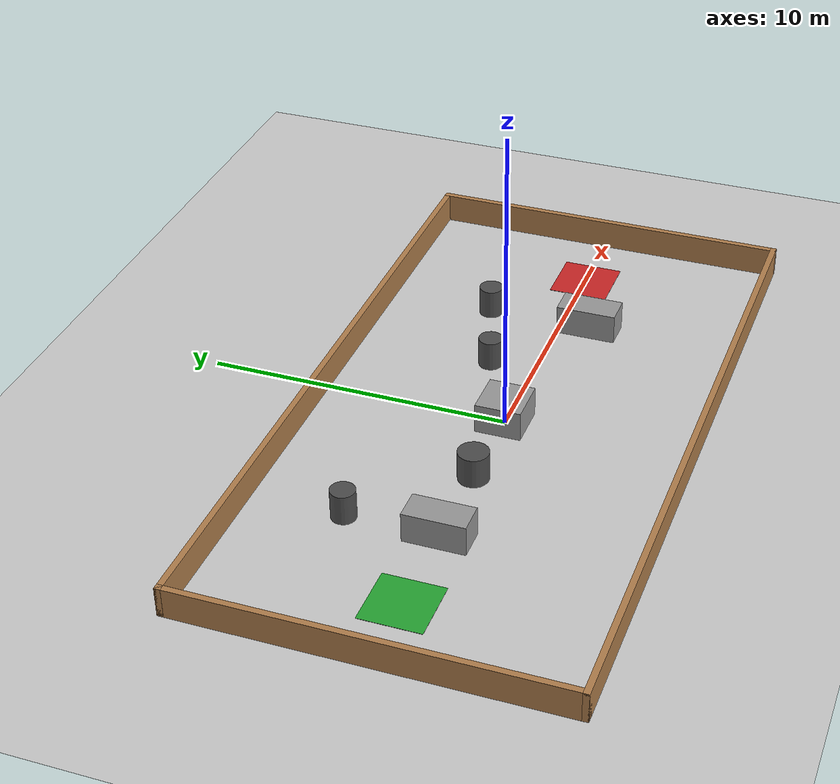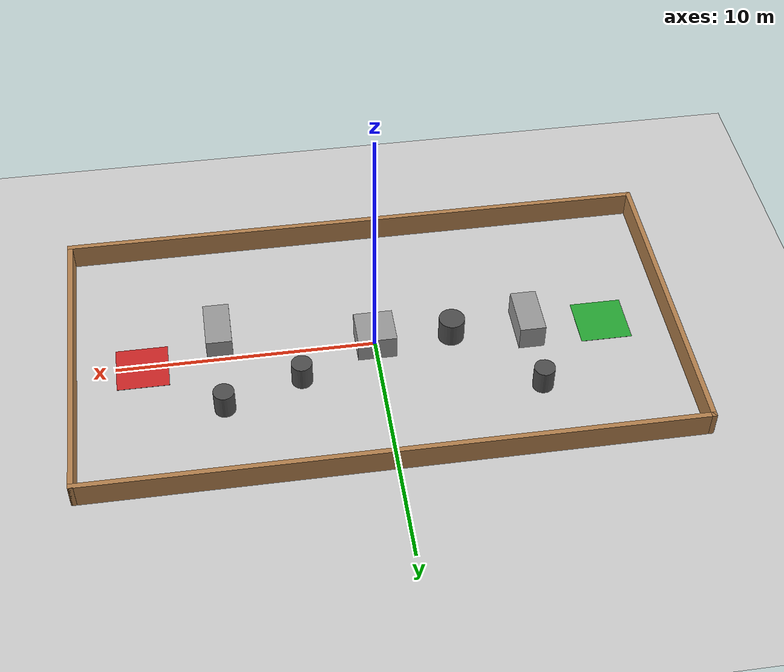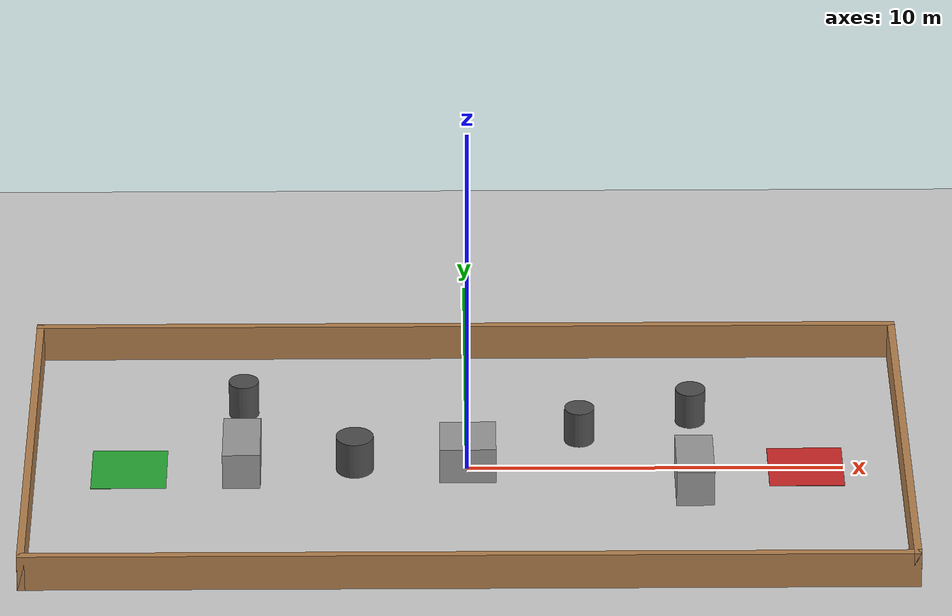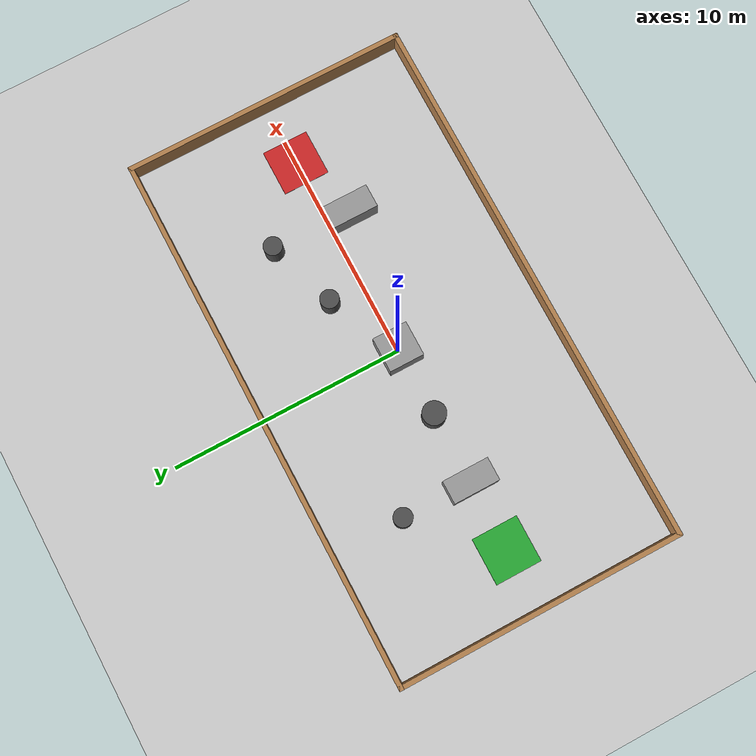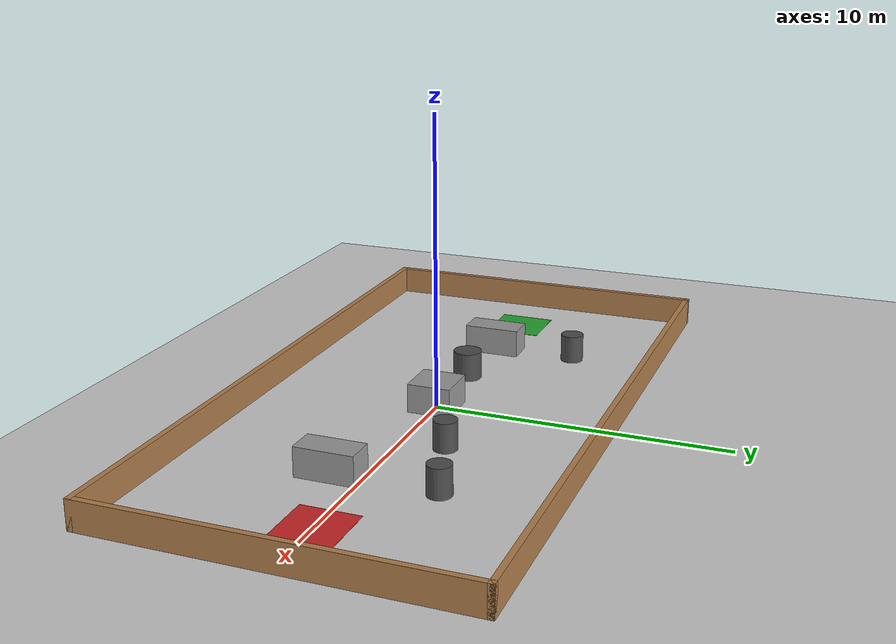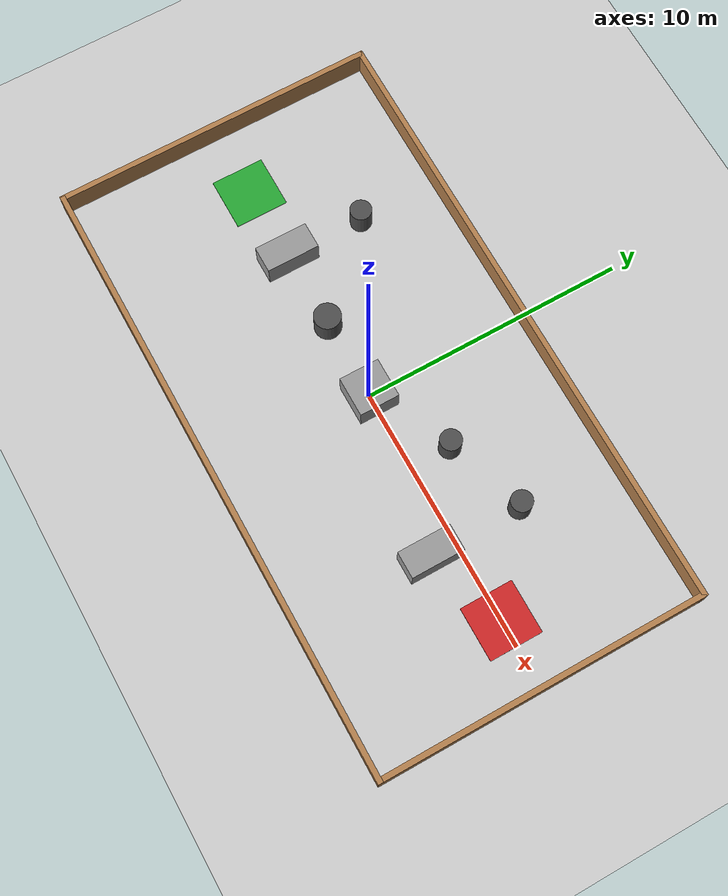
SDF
<?xml version="1.0"?>
<sdf version="1.6">
  <world name="gps_obstacles">

    <!-- Geodetic origin of the world. Longitude 39.0 = central meridian of UTM zone 37,
         so even a UTM-based navsat_transform has zero grid convergence here. -->
    <spherical_coordinates>
      <surface_model>EARTH_WGS84</surface_model>
      <world_frame_orientation>ENU</world_frame_orientation>
      <latitude_deg>55.751244</latitude_deg>
      <longitude_deg>39.0</longitude_deg>
      <elevation>150.0</elevation>
      <!-- Gazebo Classic bug: heading 180 is needed to get a true ENU world
           (see Nav2 GPS tutorial / gazebo-classic issue #2022). Verify with README section "GPS check". -->
      <heading_deg>180</heading_deg>
    </spherical_coordinates>

    <physics type="ode">
      <max_step_size>0.001</max_step_size>
      <real_time_factor>1.0</real_time_factor>
      <real_time_update_rate>1000</real_time_update_rate>
    </physics>

    <scene>
      <shadows>false</shadows>
    </scene>

    <gui>
      <camera name="user_camera">
        <pose>0 -16 14 0 0.75 1.5708</pose>
      </camera>
    </gui>

    <include><uri>model://sun</uri></include>
    <include><uri>model://ground_plane</uri></include>

    <!-- ===== Boundary walls (23.4 x 12 m arena) ===== -->
    <model name="wall_north">
      <static>true</static>
      <pose>0 6.1 0.5 0 0 0</pose>
      <link name="link">
        <collision name="collision"><geometry><box><size>23.4 0.2 1.0</size></box></geometry></collision>
        <visual name="visual">
          <geometry><box><size>23.4 0.2 1.0</size></box></geometry>
          <material><script><uri>file://media/materials/scripts/gazebo.material</uri><name>Gazebo/Wood</name></script></material>
        </visual>
      </link>
    </model>
    <model name="wall_south">
      <static>true</static>
      <pose>0 -6.1 0.5 0 0 0</pose>
      <link name="link">
        <collision name="collision"><geometry><box><size>23.4 0.2 1.0</size></box></geometry></collision>
        <visual name="visual">
          <geometry><box><size>23.4 0.2 1.0</size></box></geometry>
          <material><script><uri>file://media/materials/scripts/gazebo.material</uri><name>Gazebo/Wood</name></script></material>
        </visual>
      </link>
    </model>
    <model name="wall_east">
      <static>true</static>
      <pose>11.6 0 0.5 0 0 0</pose>
      <link name="link">
        <collision name="collision"><geometry><box><size>0.2 12.4 1.0</size></box></geometry></collision>
        <visual name="visual">
          <geometry><box><size>0.2 12.4 1.0</size></box></geometry>
          <material><script><uri>file://media/materials/scripts/gazebo.material</uri><name>Gazebo/Wood</name></script></material>
        </visual>
      </link>
    </model>
    <model name="wall_west">
      <static>true</static>
      <pose>-11.6 0 0.5 0 0 0</pose>
      <link name="link">
        <collision name="collision"><geometry><box><size>0.2 12.4 1.0</size></box></geometry></collision>
        <visual name="visual">
          <geometry><box><size>0.2 12.4 1.0</size></box></geometry>
          <material><script><uri>file://media/materials/scripts/gazebo.material</uri><name>Gazebo/Wood</name></script></material>
        </visual>
      </link>
    </model>

    <!-- ===== Static obstacles (all block the straight line between consecutive waypoints) ===== -->
    <model name="obstacle_box_1">
      <static>true</static>
      <pose>-6.0 0.0 0.5 0 0 0</pose>
      <link name="link">
        <collision name="collision"><geometry><box><size>1.0 2.0 1.0</size></box></geometry></collision>
        <visual name="visual">
          <geometry><box><size>1.0 2.0 1.0</size></box></geometry>
          <material><script><uri>file://media/materials/scripts/gazebo.material</uri><name>Gazebo/Grey</name></script></material>
        </visual>
      </link>
    </model>
    <model name="obstacle_cyl_1">
      <static>true</static>
      <pose>-6.0 3.0 0.5 0 0 0</pose>
      <link name="link">
        <collision name="collision"><geometry><cylinder><radius>0.4</radius><length>1.0</length></cylinder></geometry></collision>
        <visual name="visual">
          <geometry><cylinder><radius>0.4</radius><length>1.0</length></cylinder></geometry>
          <material><script><uri>file://media/materials/scripts/gazebo.material</uri><name>Gazebo/DarkGrey</name></script></material>
        </visual>
      </link>
    </model>
    <model name="obstacle_cyl_2">
      <static>true</static>
      <pose>-3.0 0.0 0.5 0 0 0</pose>
      <link name="link">
        <collision name="collision"><geometry><cylinder><radius>0.5</radius><length>1.0</length></cylinder></geometry></collision>
        <visual name="visual">
          <geometry><cylinder><radius>0.5</radius><length>1.0</length></cylinder></geometry>
          <material><script><uri>file://media/materials/scripts/gazebo.material</uri><name>Gazebo/DarkGrey</name></script></material>
        </visual>
      </link>
    </model>
    <model name="obstacle_box_2">
      <static>true</static>
      <pose>0.0 0.0 0.5 0 0 0</pose>
      <link name="link">
        <collision name="collision"><geometry><box><size>1.5 1.5 1.0</size></box></geometry></collision>
        <visual name="visual">
          <geometry><box><size>1.5 1.5 1.0</size></box></geometry>
          <material><script><uri>file://media/materials/scripts/gazebo.material</uri><name>Gazebo/Grey</name></script></material>
        </visual>
      </link>
    </model>
    <model name="obstacle_cyl_3">
      <static>true</static>
      <pose>3.0 1.5 0.5 0 0 0</pose>
      <link name="link">
        <collision name="collision"><geometry><cylinder><radius>0.4</radius><length>1.0</length></cylinder></geometry></collision>
        <visual name="visual">
          <geometry><cylinder><radius>0.4</radius><length>1.0</length></cylinder></geometry>
          <material><script><uri>file://media/materials/scripts/gazebo.material</uri><name>Gazebo/DarkGrey</name></script></material>
        </visual>
      </link>
    </model>
    <model name="obstacle_box_3">
      <static>true</static>
      <pose>6.0 -1.0 0.5 0 0 0</pose>
      <link name="link">
        <collision name="collision"><geometry><box><size>1.0 2.0 1.0</size></box></geometry></collision>
        <visual name="visual">
          <geometry><box><size>1.0 2.0 1.0</size></box></geometry>
          <material><script><uri>file://media/materials/scripts/gazebo.material</uri><name>Gazebo/Grey</name></script></material>
        </visual>
      </link>
    </model>
    <model name="obstacle_cyl_4">
      <static>true</static>
      <pose>6.0 2.5 0.5 0 0 0</pose>
      <link name="link">
        <collision name="collision"><geometry><cylinder><radius>0.4</radius><length>1.0</length></cylinder></geometry></collision>
        <visual name="visual">
          <geometry><cylinder><radius>0.4</radius><length>1.0</length></cylinder></geometry>
          <material><script><uri>file://media/materials/scripts/gazebo.material</uri><name>Gazebo/DarkGrey</name></script></material>
        </visual>
      </link>
    </model>

    <!-- ===== Start (A) and finish (B) zones: visual only, no collision ===== -->
    <model name="start_zone_A">
      <static>true</static>
      <pose>-9.0 0.0 0.005 0 0 0</pose>
      <link name="link">
        <visual name="visual">
          <geometry><box><size>2.0 2.0 0.01</size></box></geometry>
          <material><script><uri>file://media/materials/scripts/gazebo.material</uri><name>Gazebo/Green</name></script></material>
        </visual>
      </link>
    </model>
    <model name="finish_zone_B">
      <static>true</static>
      <pose>9.0 0.0 0.005 0 0 0</pose>
      <link name="link">
        <visual name="visual">
          <geometry><box><size>2.0 2.0 0.01</size></box></geometry>
          <material><script><uri>file://media/materials/scripts/gazebo.material</uri><name>Gazebo/Red</name></script></material>
        </visual>
      </link>
    </model>
  </world>
</sdf>
